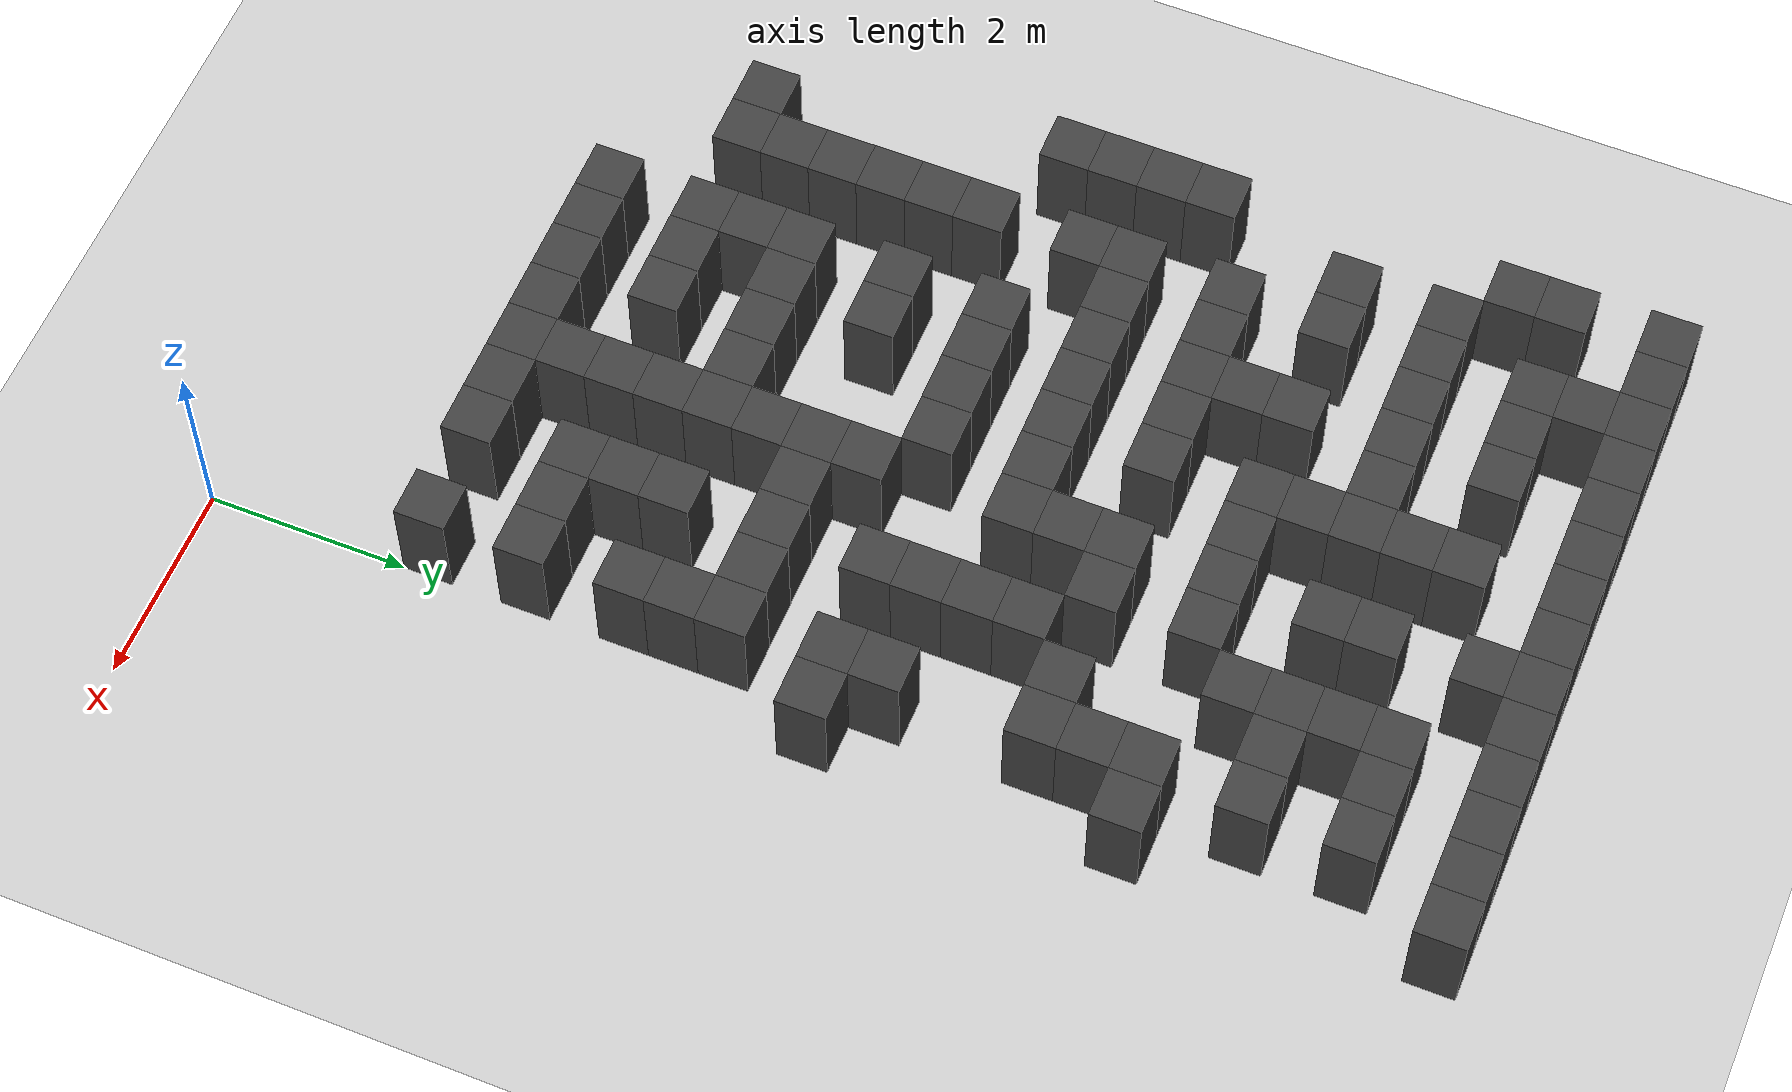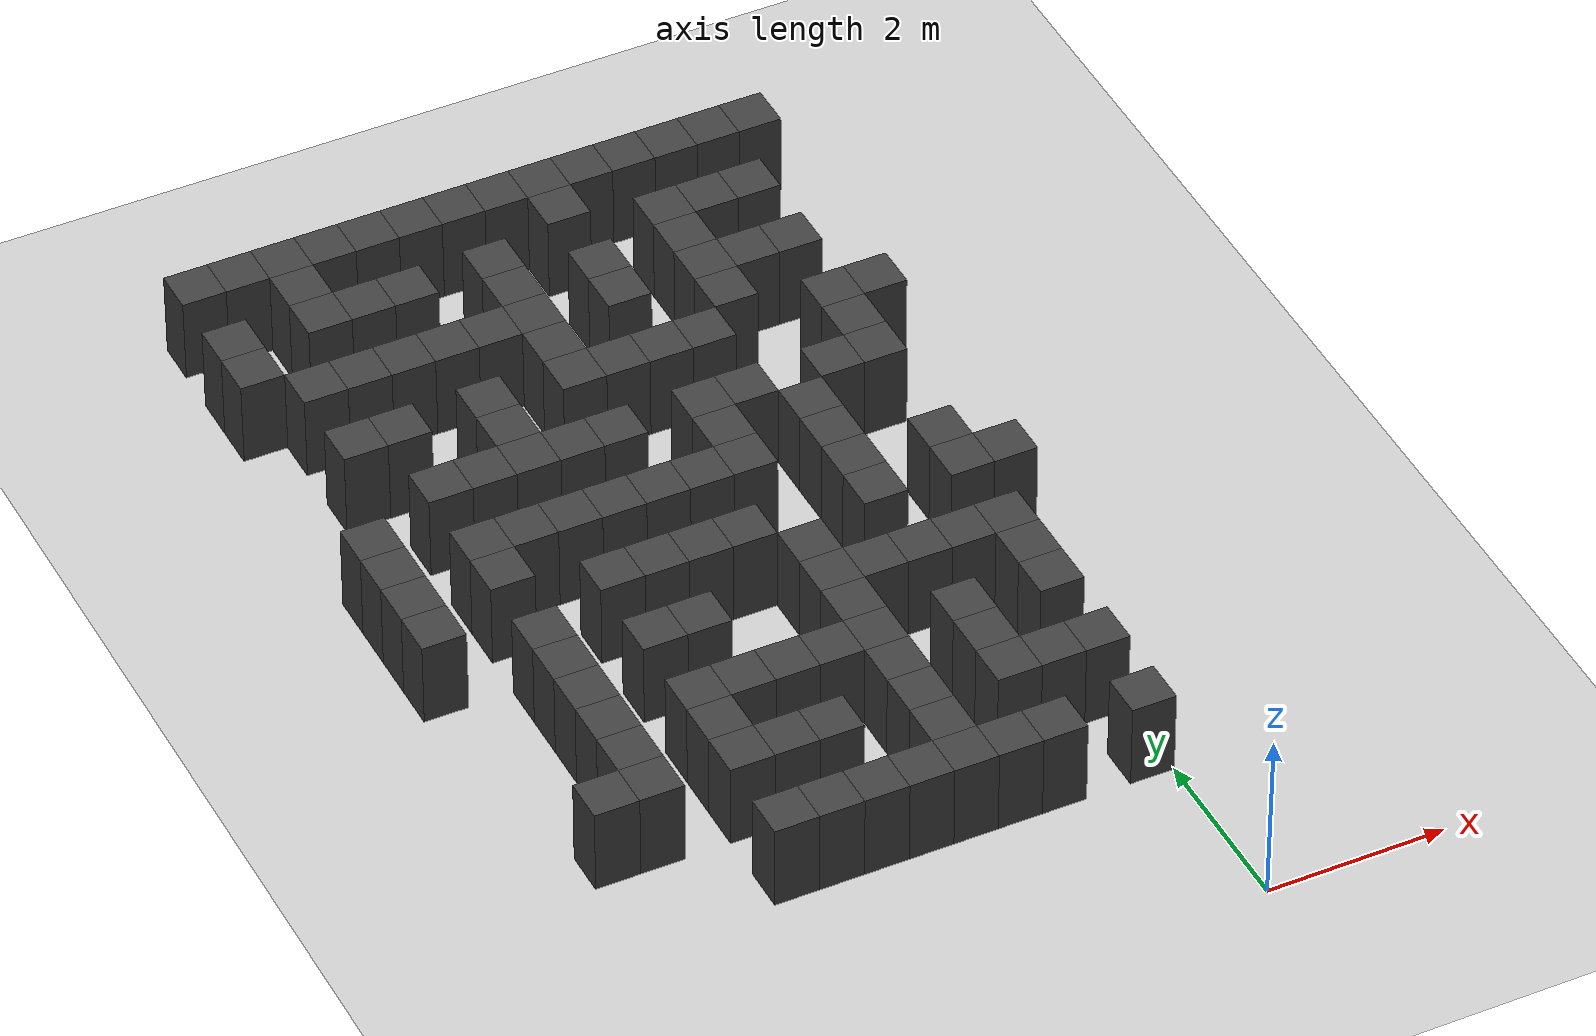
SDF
<sdf version="1.7">
 <world name="map_17503">
  <model name="ground_plane">
   <static>true</static>
   <link name="link">
    <collision name="collision">
     <geometry><plane><normal>0 0 1</normal><size>200 200</size></plane></geometry>
    </collision>
    <visual name="visual">
     <geometry><plane><normal>0 0 1</normal><size>200 200</size></plane></geometry>
     <material><ambient>0.8 0.8 0.8 1</ambient><diffuse>0.8 0.8 0.8 1</diffuse></material>
    </visual>
   </link>
  </model>
  <model name="maze_environment">
   <static>true</static>
   <link name="wall_12">
    <pose>-6.250 12.250 0.500 0 0 0</pose>
    <collision name="col"><geometry><box><size>0.5 0.5 1.0</size></box></geometry></collision>
    <visual name="vis">
     <geometry><box><size>0.5 0.5 1.0</size></box></geometry>
     <material><ambient>0.15 0.15 0.15 1</ambient><diffuse>0.25 0.25 0.25 1</diffuse></material>
    </visual>
   </link>
   <link name="wall_13">
    <pose>-5.750 12.250 0.500 0 0 0</pose>
    <collision name="col"><geometry><box><size>0.5 0.5 1.0</size></box></geometry></collision>
    <visual name="vis">
     <geometry><box><size>0.5 0.5 1.0</size></box></geometry>
     <material><ambient>0.15 0.15 0.15 1</ambient><diffuse>0.25 0.25 0.25 1</diffuse></material>
    </visual>
   </link>
   <link name="wall_14">
    <pose>-5.250 12.250 0.500 0 0 0</pose>
    <collision name="col"><geometry><box><size>0.5 0.5 1.0</size></box></geometry></collision>
    <visual name="vis">
     <geometry><box><size>0.5 0.5 1.0</size></box></geometry>
     <material><ambient>0.15 0.15 0.15 1</ambient><diffuse>0.25 0.25 0.25 1</diffuse></material>
    </visual>
   </link>
   <link name="wall_15">
    <pose>-4.750 12.250 0.500 0 0 0</pose>
    <collision name="col"><geometry><box><size>0.5 0.5 1.0</size></box></geometry></collision>
    <visual name="vis">
     <geometry><box><size>0.5 0.5 1.0</size></box></geometry>
     <material><ambient>0.15 0.15 0.15 1</ambient><diffuse>0.25 0.25 0.25 1</diffuse></material>
    </visual>
   </link>
   <link name="wall_16">
    <pose>-4.250 12.250 0.500 0 0 0</pose>
    <collision name="col"><geometry><box><size>0.5 0.5 1.0</size></box></geometry></collision>
    <visual name="vis">
     <geometry><box><size>0.5 0.5 1.0</size></box></geometry>
     <material><ambient>0.15 0.15 0.15 1</ambient><diffuse>0.25 0.25 0.25 1</diffuse></material>
    </visual>
   </link>
   <link name="wall_17">
    <pose>-3.750 12.250 0.500 0 0 0</pose>
    <collision name="col"><geometry><box><size>0.5 0.5 1.0</size></box></geometry></collision>
    <visual name="vis">
     <geometry><box><size>0.5 0.5 1.0</size></box></geometry>
     <material><ambient>0.15 0.15 0.15 1</ambient><diffuse>0.25 0.25 0.25 1</diffuse></material>
    </visual>
   </link>
   <link name="wall_18">
    <pose>-3.250 12.250 0.500 0 0 0</pose>
    <collision name="col"><geometry><box><size>0.5 0.5 1.0</size></box></geometry></collision>
    <visual name="vis">
     <geometry><box><size>0.5 0.5 1.0</size></box></geometry>
     <material><ambient>0.15 0.15 0.15 1</ambient><diffuse>0.25 0.25 0.25 1</diffuse></material>
    </visual>
   </link>
   <link name="wall_19">
    <pose>-2.750 12.250 0.500 0 0 0</pose>
    <collision name="col"><geometry><box><size>0.5 0.5 1.0</size></box></geometry></collision>
    <visual name="vis">
     <geometry><box><size>0.5 0.5 1.0</size></box></geometry>
     <material><ambient>0.15 0.15 0.15 1</ambient><diffuse>0.25 0.25 0.25 1</diffuse></material>
    </visual>
   </link>
   <link name="wall_20">
    <pose>-2.250 12.250 0.500 0 0 0</pose>
    <collision name="col"><geometry><box><size>0.5 0.5 1.0</size></box></geometry></collision>
    <visual name="vis">
     <geometry><box><size>0.5 0.5 1.0</size></box></geometry>
     <material><ambient>0.15 0.15 0.15 1</ambient><diffuse>0.25 0.25 0.25 1</diffuse></material>
    </visual>
   </link>
   <link name="wall_21">
    <pose>-1.750 12.250 0.500 0 0 0</pose>
    <collision name="col"><geometry><box><size>0.5 0.5 1.0</size></box></geometry></collision>
    <visual name="vis">
     <geometry><box><size>0.5 0.5 1.0</size></box></geometry>
     <material><ambient>0.15 0.15 0.15 1</ambient><diffuse>0.25 0.25 0.25 1</diffuse></material>
    </visual>
   </link>
   <link name="wall_22">
    <pose>-1.250 12.250 0.500 0 0 0</pose>
    <collision name="col"><geometry><box><size>0.5 0.5 1.0</size></box></geometry></collision>
    <visual name="vis">
     <geometry><box><size>0.5 0.5 1.0</size></box></geometry>
     <material><ambient>0.15 0.15 0.15 1</ambient><diffuse>0.25 0.25 0.25 1</diffuse></material>
    </visual>
   </link>
   <link name="wall_23">
    <pose>-0.750 12.250 0.500 0 0 0</pose>
    <collision name="col"><geometry><box><size>0.5 0.5 1.0</size></box></geometry></collision>
    <visual name="vis">
     <geometry><box><size>0.5 0.5 1.0</size></box></geometry>
     <material><ambient>0.15 0.15 0.15 1</ambient><diffuse>0.25 0.25 0.25 1</diffuse></material>
    </visual>
   </link>
   <link name="wall_24">
    <pose>-0.250 12.250 0.500 0 0 0</pose>
    <collision name="col"><geometry><box><size>0.5 0.5 1.0</size></box></geometry></collision>
    <visual name="vis">
     <geometry><box><size>0.5 0.5 1.0</size></box></geometry>
     <material><ambient>0.15 0.15 0.15 1</ambient><diffuse>0.25 0.25 0.25 1</diffuse></material>
    </visual>
   </link>
   <link name="wall_25">
    <pose>0.250 12.250 0.500 0 0 0</pose>
    <collision name="col"><geometry><box><size>0.5 0.5 1.0</size></box></geometry></collision>
    <visual name="vis">
     <geometry><box><size>0.5 0.5 1.0</size></box></geometry>
     <material><ambient>0.15 0.15 0.15 1</ambient><diffuse>0.25 0.25 0.25 1</diffuse></material>
    </visual>
   </link>
   <link name="wall_53">
    <pose>-5.250 11.750 0.500 0 0 0</pose>
    <collision name="col"><geometry><box><size>0.5 0.5 1.0</size></box></geometry></collision>
    <visual name="vis">
     <geometry><box><size>0.5 0.5 1.0</size></box></geometry>
     <material><ambient>0.15 0.15 0.15 1</ambient><diffuse>0.25 0.25 0.25 1</diffuse></material>
    </visual>
   </link>
   <link name="wall_54">
    <pose>-2.250 11.750 0.500 0 0 0</pose>
    <collision name="col"><geometry><box><size>0.5 0.5 1.0</size></box></geometry></collision>
    <visual name="vis">
     <geometry><box><size>0.5 0.5 1.0</size></box></geometry>
     <material><ambient>0.15 0.15 0.15 1</ambient><diffuse>0.25 0.25 0.25 1</diffuse></material>
    </visual>
   </link>
   <link name="wall_66">
    <pose>-6.250 11.250 0.500 0 0 0</pose>
    <collision name="col"><geometry><box><size>0.5 0.5 1.0</size></box></geometry></collision>
    <visual name="vis">
     <geometry><box><size>0.5 0.5 1.0</size></box></geometry>
     <material><ambient>0.15 0.15 0.15 1</ambient><diffuse>0.25 0.25 0.25 1</diffuse></material>
    </visual>
   </link>
   <link name="wall_67">
    <pose>-5.250 11.250 0.500 0 0 0</pose>
    <collision name="col"><geometry><box><size>0.5 0.5 1.0</size></box></geometry></collision>
    <visual name="vis">
     <geometry><box><size>0.5 0.5 1.0</size></box></geometry>
     <material><ambient>0.15 0.15 0.15 1</ambient><diffuse>0.25 0.25 0.25 1</diffuse></material>
    </visual>
   </link>
   <link name="wall_68">
    <pose>-4.750 11.250 0.500 0 0 0</pose>
    <collision name="col"><geometry><box><size>0.5 0.5 1.0</size></box></geometry></collision>
    <visual name="vis">
     <geometry><box><size>0.5 0.5 1.0</size></box></geometry>
     <material><ambient>0.15 0.15 0.15 1</ambient><diffuse>0.25 0.25 0.25 1</diffuse></material>
    </visual>
   </link>
   <link name="wall_69">
    <pose>-4.250 11.250 0.500 0 0 0</pose>
    <collision name="col"><geometry><box><size>0.5 0.5 1.0</size></box></geometry></collision>
    <visual name="vis">
     <geometry><box><size>0.5 0.5 1.0</size></box></geometry>
     <material><ambient>0.15 0.15 0.15 1</ambient><diffuse>0.25 0.25 0.25 1</diffuse></material>
    </visual>
   </link>
   <link name="wall_70">
    <pose>-3.250 11.250 0.500 0 0 0</pose>
    <collision name="col"><geometry><box><size>0.5 0.5 1.0</size></box></geometry></collision>
    <visual name="vis">
     <geometry><box><size>0.5 0.5 1.0</size></box></geometry>
     <material><ambient>0.15 0.15 0.15 1</ambient><diffuse>0.25 0.25 0.25 1</diffuse></material>
    </visual>
   </link>
   <link name="wall_71">
    <pose>-1.250 11.250 0.500 0 0 0</pose>
    <collision name="col"><geometry><box><size>0.5 0.5 1.0</size></box></geometry></collision>
    <visual name="vis">
     <geometry><box><size>0.5 0.5 1.0</size></box></geometry>
     <material><ambient>0.15 0.15 0.15 1</ambient><diffuse>0.25 0.25 0.25 1</diffuse></material>
    </visual>
   </link>
   <link name="wall_72">
    <pose>-0.750 11.250 0.500 0 0 0</pose>
    <collision name="col"><geometry><box><size>0.5 0.5 1.0</size></box></geometry></collision>
    <visual name="vis">
     <geometry><box><size>0.5 0.5 1.0</size></box></geometry>
     <material><ambient>0.15 0.15 0.15 1</ambient><diffuse>0.25 0.25 0.25 1</diffuse></material>
    </visual>
   </link>
   <link name="wall_73">
    <pose>-0.250 11.250 0.500 0 0 0</pose>
    <collision name="col"><geometry><box><size>0.5 0.5 1.0</size></box></geometry></collision>
    <visual name="vis">
     <geometry><box><size>0.5 0.5 1.0</size></box></geometry>
     <material><ambient>0.15 0.15 0.15 1</ambient><diffuse>0.25 0.25 0.25 1</diffuse></material>
    </visual>
   </link>
   <link name="wall_96">
    <pose>-6.250 10.750 0.500 0 0 0</pose>
    <collision name="col"><geometry><box><size>0.5 0.5 1.0</size></box></geometry></collision>
    <visual name="vis">
     <geometry><box><size>0.5 0.5 1.0</size></box></geometry>
     <material><ambient>0.15 0.15 0.15 1</ambient><diffuse>0.25 0.25 0.25 1</diffuse></material>
    </visual>
   </link>
   <link name="wall_97">
    <pose>-3.250 10.750 0.500 0 0 0</pose>
    <collision name="col"><geometry><box><size>0.5 0.5 1.0</size></box></geometry></collision>
    <visual name="vis">
     <geometry><box><size>0.5 0.5 1.0</size></box></geometry>
     <material><ambient>0.15 0.15 0.15 1</ambient><diffuse>0.25 0.25 0.25 1</diffuse></material>
    </visual>
   </link>
   <link name="wall_98">
    <pose>-2.250 10.750 0.500 0 0 0</pose>
    <collision name="col"><geometry><box><size>0.5 0.5 1.0</size></box></geometry></collision>
    <visual name="vis">
     <geometry><box><size>0.5 0.5 1.0</size></box></geometry>
     <material><ambient>0.15 0.15 0.15 1</ambient><diffuse>0.25 0.25 0.25 1</diffuse></material>
    </visual>
   </link>
   <link name="wall_99">
    <pose>-1.250 10.750 0.500 0 0 0</pose>
    <collision name="col"><geometry><box><size>0.5 0.5 1.0</size></box></geometry></collision>
    <visual name="vis">
     <geometry><box><size>0.5 0.5 1.0</size></box></geometry>
     <material><ambient>0.15 0.15 0.15 1</ambient><diffuse>0.25 0.25 0.25 1</diffuse></material>
    </visual>
   </link>
   <link name="wall_118">
    <pose>-5.750 10.250 0.500 0 0 0</pose>
    <collision name="col"><geometry><box><size>0.5 0.5 1.0</size></box></geometry></collision>
    <visual name="vis">
     <geometry><box><size>0.5 0.5 1.0</size></box></geometry>
     <material><ambient>0.15 0.15 0.15 1</ambient><diffuse>0.25 0.25 0.25 1</diffuse></material>
    </visual>
   </link>
   <link name="wall_119">
    <pose>-5.250 10.250 0.500 0 0 0</pose>
    <collision name="col"><geometry><box><size>0.5 0.5 1.0</size></box></geometry></collision>
    <visual name="vis">
     <geometry><box><size>0.5 0.5 1.0</size></box></geometry>
     <material><ambient>0.15 0.15 0.15 1</ambient><diffuse>0.25 0.25 0.25 1</diffuse></material>
    </visual>
   </link>
   <link name="wall_120">
    <pose>-4.750 10.250 0.500 0 0 0</pose>
    <collision name="col"><geometry><box><size>0.5 0.5 1.0</size></box></geometry></collision>
    <visual name="vis">
     <geometry><box><size>0.5 0.5 1.0</size></box></geometry>
     <material><ambient>0.15 0.15 0.15 1</ambient><diffuse>0.25 0.25 0.25 1</diffuse></material>
    </visual>
   </link>
   <link name="wall_121">
    <pose>-4.250 10.250 0.500 0 0 0</pose>
    <collision name="col"><geometry><box><size>0.5 0.5 1.0</size></box></geometry></collision>
    <visual name="vis">
     <geometry><box><size>0.5 0.5 1.0</size></box></geometry>
     <material><ambient>0.15 0.15 0.15 1</ambient><diffuse>0.25 0.25 0.25 1</diffuse></material>
    </visual>
   </link>
   <link name="wall_122">
    <pose>-3.750 10.250 0.500 0 0 0</pose>
    <collision name="col"><geometry><box><size>0.5 0.5 1.0</size></box></geometry></collision>
    <visual name="vis">
     <geometry><box><size>0.5 0.5 1.0</size></box></geometry>
     <material><ambient>0.15 0.15 0.15 1</ambient><diffuse>0.25 0.25 0.25 1</diffuse></material>
    </visual>
   </link>
   <link name="wall_123">
    <pose>-3.250 10.250 0.500 0 0 0</pose>
    <collision name="col"><geometry><box><size>0.5 0.5 1.0</size></box></geometry></collision>
    <visual name="vis">
     <geometry><box><size>0.5 0.5 1.0</size></box></geometry>
     <material><ambient>0.15 0.15 0.15 1</ambient><diffuse>0.25 0.25 0.25 1</diffuse></material>
    </visual>
   </link>
   <link name="wall_124">
    <pose>-2.250 10.250 0.500 0 0 0</pose>
    <collision name="col"><geometry><box><size>0.5 0.5 1.0</size></box></geometry></collision>
    <visual name="vis">
     <geometry><box><size>0.5 0.5 1.0</size></box></geometry>
     <material><ambient>0.15 0.15 0.15 1</ambient><diffuse>0.25 0.25 0.25 1</diffuse></material>
    </visual>
   </link>
   <link name="wall_125">
    <pose>-1.250 10.250 0.500 0 0 0</pose>
    <collision name="col"><geometry><box><size>0.5 0.5 1.0</size></box></geometry></collision>
    <visual name="vis">
     <geometry><box><size>0.5 0.5 1.0</size></box></geometry>
     <material><ambient>0.15 0.15 0.15 1</ambient><diffuse>0.25 0.25 0.25 1</diffuse></material>
    </visual>
   </link>
   <link name="wall_126">
    <pose>-0.750 10.250 0.500 0 0 0</pose>
    <collision name="col"><geometry><box><size>0.5 0.5 1.0</size></box></geometry></collision>
    <visual name="vis">
     <geometry><box><size>0.5 0.5 1.0</size></box></geometry>
     <material><ambient>0.15 0.15 0.15 1</ambient><diffuse>0.25 0.25 0.25 1</diffuse></material>
    </visual>
   </link>
   <link name="wall_127">
    <pose>-0.250 10.250 0.500 0 0 0</pose>
    <collision name="col"><geometry><box><size>0.5 0.5 1.0</size></box></geometry></collision>
    <visual name="vis">
     <geometry><box><size>0.5 0.5 1.0</size></box></geometry>
     <material><ambient>0.15 0.15 0.15 1</ambient><diffuse>0.25 0.25 0.25 1</diffuse></material>
    </visual>
   </link>
   <link name="wall_145">
    <pose>-3.250 9.750 0.500 0 0 0</pose>
    <collision name="col"><geometry><box><size>0.5 0.5 1.0</size></box></geometry></collision>
    <visual name="vis">
     <geometry><box><size>0.5 0.5 1.0</size></box></geometry>
     <material><ambient>0.15 0.15 0.15 1</ambient><diffuse>0.25 0.25 0.25 1</diffuse></material>
    </visual>
   </link>
   <link name="wall_146">
    <pose>-1.250 9.750 0.500 0 0 0</pose>
    <collision name="col"><geometry><box><size>0.5 0.5 1.0</size></box></geometry></collision>
    <visual name="vis">
     <geometry><box><size>0.5 0.5 1.0</size></box></geometry>
     <material><ambient>0.15 0.15 0.15 1</ambient><diffuse>0.25 0.25 0.25 1</diffuse></material>
    </visual>
   </link>
   <link name="wall_162">
    <pose>-5.750 9.250 0.500 0 0 0</pose>
    <collision name="col"><geometry><box><size>0.5 0.5 1.0</size></box></geometry></collision>
    <visual name="vis">
     <geometry><box><size>0.5 0.5 1.0</size></box></geometry>
     <material><ambient>0.15 0.15 0.15 1</ambient><diffuse>0.25 0.25 0.25 1</diffuse></material>
    </visual>
   </link>
   <link name="wall_163">
    <pose>-5.250 9.250 0.500 0 0 0</pose>
    <collision name="col"><geometry><box><size>0.5 0.5 1.0</size></box></geometry></collision>
    <visual name="vis">
     <geometry><box><size>0.5 0.5 1.0</size></box></geometry>
     <material><ambient>0.15 0.15 0.15 1</ambient><diffuse>0.25 0.25 0.25 1</diffuse></material>
    </visual>
   </link>
   <link name="wall_164">
    <pose>-4.250 9.250 0.500 0 0 0</pose>
    <collision name="col"><geometry><box><size>0.5 0.5 1.0</size></box></geometry></collision>
    <visual name="vis">
     <geometry><box><size>0.5 0.5 1.0</size></box></geometry>
     <material><ambient>0.15 0.15 0.15 1</ambient><diffuse>0.25 0.25 0.25 1</diffuse></material>
    </visual>
   </link>
   <link name="wall_165">
    <pose>-3.250 9.250 0.500 0 0 0</pose>
    <collision name="col"><geometry><box><size>0.5 0.5 1.0</size></box></geometry></collision>
    <visual name="vis">
     <geometry><box><size>0.5 0.5 1.0</size></box></geometry>
     <material><ambient>0.15 0.15 0.15 1</ambient><diffuse>0.25 0.25 0.25 1</diffuse></material>
    </visual>
   </link>
   <link name="wall_166">
    <pose>-2.750 9.250 0.500 0 0 0</pose>
    <collision name="col"><geometry><box><size>0.5 0.5 1.0</size></box></geometry></collision>
    <visual name="vis">
     <geometry><box><size>0.5 0.5 1.0</size></box></geometry>
     <material><ambient>0.15 0.15 0.15 1</ambient><diffuse>0.25 0.25 0.25 1</diffuse></material>
    </visual>
   </link>
   <link name="wall_167">
    <pose>-2.250 9.250 0.500 0 0 0</pose>
    <collision name="col"><geometry><box><size>0.5 0.5 1.0</size></box></geometry></collision>
    <visual name="vis">
     <geometry><box><size>0.5 0.5 1.0</size></box></geometry>
     <material><ambient>0.15 0.15 0.15 1</ambient><diffuse>0.25 0.25 0.25 1</diffuse></material>
    </visual>
   </link>
   <link name="wall_168">
    <pose>-1.750 9.250 0.500 0 0 0</pose>
    <collision name="col"><geometry><box><size>0.5 0.5 1.0</size></box></geometry></collision>
    <visual name="vis">
     <geometry><box><size>0.5 0.5 1.0</size></box></geometry>
     <material><ambient>0.15 0.15 0.15 1</ambient><diffuse>0.25 0.25 0.25 1</diffuse></material>
    </visual>
   </link>
   <link name="wall_169">
    <pose>-0.250 9.250 0.500 0 0 0</pose>
    <collision name="col"><geometry><box><size>0.5 0.5 1.0</size></box></geometry></collision>
    <visual name="vis">
     <geometry><box><size>0.5 0.5 1.0</size></box></geometry>
     <material><ambient>0.15 0.15 0.15 1</ambient><diffuse>0.25 0.25 0.25 1</diffuse></material>
    </visual>
   </link>
   <link name="wall_170">
    <pose>0.250 9.250 0.500 0 0 0</pose>
    <collision name="col"><geometry><box><size>0.5 0.5 1.0</size></box></geometry></collision>
    <visual name="vis">
     <geometry><box><size>0.5 0.5 1.0</size></box></geometry>
     <material><ambient>0.15 0.15 0.15 1</ambient><diffuse>0.25 0.25 0.25 1</diffuse></material>
    </visual>
   </link>
   <link name="wall_194">
    <pose>-4.250 8.750 0.500 0 0 0</pose>
    <collision name="col"><geometry><box><size>0.5 0.5 1.0</size></box></geometry></collision>
    <visual name="vis">
     <geometry><box><size>0.5 0.5 1.0</size></box></geometry>
     <material><ambient>0.15 0.15 0.15 1</ambient><diffuse>0.25 0.25 0.25 1</diffuse></material>
    </visual>
   </link>
   <link name="wall_195">
    <pose>-0.250 8.750 0.500 0 0 0</pose>
    <collision name="col"><geometry><box><size>0.5 0.5 1.0</size></box></geometry></collision>
    <visual name="vis">
     <geometry><box><size>0.5 0.5 1.0</size></box></geometry>
     <material><ambient>0.15 0.15 0.15 1</ambient><diffuse>0.25 0.25 0.25 1</diffuse></material>
    </visual>
   </link>
   <link name="wall_210">
    <pose>-5.250 8.250 0.500 0 0 0</pose>
    <collision name="col"><geometry><box><size>0.5 0.5 1.0</size></box></geometry></collision>
    <visual name="vis">
     <geometry><box><size>0.5 0.5 1.0</size></box></geometry>
     <material><ambient>0.15 0.15 0.15 1</ambient><diffuse>0.25 0.25 0.25 1</diffuse></material>
    </visual>
   </link>
   <link name="wall_211">
    <pose>-4.750 8.250 0.500 0 0 0</pose>
    <collision name="col"><geometry><box><size>0.5 0.5 1.0</size></box></geometry></collision>
    <visual name="vis">
     <geometry><box><size>0.5 0.5 1.0</size></box></geometry>
     <material><ambient>0.15 0.15 0.15 1</ambient><diffuse>0.25 0.25 0.25 1</diffuse></material>
    </visual>
   </link>
   <link name="wall_212">
    <pose>-4.250 8.250 0.500 0 0 0</pose>
    <collision name="col"><geometry><box><size>0.5 0.5 1.0</size></box></geometry></collision>
    <visual name="vis">
     <geometry><box><size>0.5 0.5 1.0</size></box></geometry>
     <material><ambient>0.15 0.15 0.15 1</ambient><diffuse>0.25 0.25 0.25 1</diffuse></material>
    </visual>
   </link>
   <link name="wall_213">
    <pose>-3.750 8.250 0.500 0 0 0</pose>
    <collision name="col"><geometry><box><size>0.5 0.5 1.0</size></box></geometry></collision>
    <visual name="vis">
     <geometry><box><size>0.5 0.5 1.0</size></box></geometry>
     <material><ambient>0.15 0.15 0.15 1</ambient><diffuse>0.25 0.25 0.25 1</diffuse></material>
    </visual>
   </link>
   <link name="wall_214">
    <pose>-3.250 8.250 0.500 0 0 0</pose>
    <collision name="col"><geometry><box><size>0.5 0.5 1.0</size></box></geometry></collision>
    <visual name="vis">
     <geometry><box><size>0.5 0.5 1.0</size></box></geometry>
     <material><ambient>0.15 0.15 0.15 1</ambient><diffuse>0.25 0.25 0.25 1</diffuse></material>
    </visual>
   </link>
   <link name="wall_215">
    <pose>-2.250 8.250 0.500 0 0 0</pose>
    <collision name="col"><geometry><box><size>0.5 0.5 1.0</size></box></geometry></collision>
    <visual name="vis">
     <geometry><box><size>0.5 0.5 1.0</size></box></geometry>
     <material><ambient>0.15 0.15 0.15 1</ambient><diffuse>0.25 0.25 0.25 1</diffuse></material>
    </visual>
   </link>
   <link name="wall_216">
    <pose>-1.750 8.250 0.500 0 0 0</pose>
    <collision name="col"><geometry><box><size>0.5 0.5 1.0</size></box></geometry></collision>
    <visual name="vis">
     <geometry><box><size>0.5 0.5 1.0</size></box></geometry>
     <material><ambient>0.15 0.15 0.15 1</ambient><diffuse>0.25 0.25 0.25 1</diffuse></material>
    </visual>
   </link>
   <link name="wall_217">
    <pose>-0.750 8.250 0.500 0 0 0</pose>
    <collision name="col"><geometry><box><size>0.5 0.5 1.0</size></box></geometry></collision>
    <visual name="vis">
     <geometry><box><size>0.5 0.5 1.0</size></box></geometry>
     <material><ambient>0.15 0.15 0.15 1</ambient><diffuse>0.25 0.25 0.25 1</diffuse></material>
    </visual>
   </link>
   <link name="wall_218">
    <pose>-0.250 8.250 0.500 0 0 0</pose>
    <collision name="col"><geometry><box><size>0.5 0.5 1.0</size></box></geometry></collision>
    <visual name="vis">
     <geometry><box><size>0.5 0.5 1.0</size></box></geometry>
     <material><ambient>0.15 0.15 0.15 1</ambient><diffuse>0.25 0.25 0.25 1</diffuse></material>
    </visual>
   </link>
   <link name="wall_239">
    <pose>-6.250 7.750 0.500 0 0 0</pose>
    <collision name="col"><geometry><box><size>0.5 0.5 1.0</size></box></geometry></collision>
    <visual name="vis">
     <geometry><box><size>0.5 0.5 1.0</size></box></geometry>
     <material><ambient>0.15 0.15 0.15 1</ambient><diffuse>0.25 0.25 0.25 1</diffuse></material>
    </visual>
   </link>
   <link name="wall_240">
    <pose>-2.250 7.750 0.500 0 0 0</pose>
    <collision name="col"><geometry><box><size>0.5 0.5 1.0</size></box></geometry></collision>
    <visual name="vis">
     <geometry><box><size>0.5 0.5 1.0</size></box></geometry>
     <material><ambient>0.15 0.15 0.15 1</ambient><diffuse>0.25 0.25 0.25 1</diffuse></material>
    </visual>
   </link>
   <link name="wall_241">
    <pose>-1.250 7.750 0.500 0 0 0</pose>
    <collision name="col"><geometry><box><size>0.5 0.5 1.0</size></box></geometry></collision>
    <visual name="vis">
     <geometry><box><size>0.5 0.5 1.0</size></box></geometry>
     <material><ambient>0.15 0.15 0.15 1</ambient><diffuse>0.25 0.25 0.25 1</diffuse></material>
    </visual>
   </link>
   <link name="wall_263">
    <pose>-6.250 7.250 0.500 0 0 0</pose>
    <collision name="col"><geometry><box><size>0.5 0.5 1.0</size></box></geometry></collision>
    <visual name="vis">
     <geometry><box><size>0.5 0.5 1.0</size></box></geometry>
     <material><ambient>0.15 0.15 0.15 1</ambient><diffuse>0.25 0.25 0.25 1</diffuse></material>
    </visual>
   </link>
   <link name="wall_264">
    <pose>-5.250 7.250 0.500 0 0 0</pose>
    <collision name="col"><geometry><box><size>0.5 0.5 1.0</size></box></geometry></collision>
    <visual name="vis">
     <geometry><box><size>0.5 0.5 1.0</size></box></geometry>
     <material><ambient>0.15 0.15 0.15 1</ambient><diffuse>0.25 0.25 0.25 1</diffuse></material>
    </visual>
   </link>
   <link name="wall_265">
    <pose>-4.750 7.250 0.500 0 0 0</pose>
    <collision name="col"><geometry><box><size>0.5 0.5 1.0</size></box></geometry></collision>
    <visual name="vis">
     <geometry><box><size>0.5 0.5 1.0</size></box></geometry>
     <material><ambient>0.15 0.15 0.15 1</ambient><diffuse>0.25 0.25 0.25 1</diffuse></material>
    </visual>
   </link>
   <link name="wall_266">
    <pose>-4.250 7.250 0.500 0 0 0</pose>
    <collision name="col"><geometry><box><size>0.5 0.5 1.0</size></box></geometry></collision>
    <visual name="vis">
     <geometry><box><size>0.5 0.5 1.0</size></box></geometry>
     <material><ambient>0.15 0.15 0.15 1</ambient><diffuse>0.25 0.25 0.25 1</diffuse></material>
    </visual>
   </link>
   <link name="wall_267">
    <pose>-3.750 7.250 0.500 0 0 0</pose>
    <collision name="col"><geometry><box><size>0.5 0.5 1.0</size></box></geometry></collision>
    <visual name="vis">
     <geometry><box><size>0.5 0.5 1.0</size></box></geometry>
     <material><ambient>0.15 0.15 0.15 1</ambient><diffuse>0.25 0.25 0.25 1</diffuse></material>
    </visual>
   </link>
   <link name="wall_268">
    <pose>-3.250 7.250 0.500 0 0 0</pose>
    <collision name="col"><geometry><box><size>0.5 0.5 1.0</size></box></geometry></collision>
    <visual name="vis">
     <geometry><box><size>0.5 0.5 1.0</size></box></geometry>
     <material><ambient>0.15 0.15 0.15 1</ambient><diffuse>0.25 0.25 0.25 1</diffuse></material>
    </visual>
   </link>
   <link name="wall_269">
    <pose>-2.750 7.250 0.500 0 0 0</pose>
    <collision name="col"><geometry><box><size>0.5 0.5 1.0</size></box></geometry></collision>
    <visual name="vis">
     <geometry><box><size>0.5 0.5 1.0</size></box></geometry>
     <material><ambient>0.15 0.15 0.15 1</ambient><diffuse>0.25 0.25 0.25 1</diffuse></material>
    </visual>
   </link>
   <link name="wall_270">
    <pose>-2.250 7.250 0.500 0 0 0</pose>
    <collision name="col"><geometry><box><size>0.5 0.5 1.0</size></box></geometry></collision>
    <visual name="vis">
     <geometry><box><size>0.5 0.5 1.0</size></box></geometry>
     <material><ambient>0.15 0.15 0.15 1</ambient><diffuse>0.25 0.25 0.25 1</diffuse></material>
    </visual>
   </link>
   <link name="wall_271">
    <pose>-1.250 7.250 0.500 0 0 0</pose>
    <collision name="col"><geometry><box><size>0.5 0.5 1.0</size></box></geometry></collision>
    <visual name="vis">
     <geometry><box><size>0.5 0.5 1.0</size></box></geometry>
     <material><ambient>0.15 0.15 0.15 1</ambient><diffuse>0.25 0.25 0.25 1</diffuse></material>
    </visual>
   </link>
   <link name="wall_286">
    <pose>-6.250 6.750 0.500 0 0 0</pose>
    <collision name="col"><geometry><box><size>0.5 0.5 1.0</size></box></geometry></collision>
    <visual name="vis">
     <geometry><box><size>0.5 0.5 1.0</size></box></geometry>
     <material><ambient>0.15 0.15 0.15 1</ambient><diffuse>0.25 0.25 0.25 1</diffuse></material>
    </visual>
   </link>
   <link name="wall_287">
    <pose>-5.250 6.750 0.500 0 0 0</pose>
    <collision name="col"><geometry><box><size>0.5 0.5 1.0</size></box></geometry></collision>
    <visual name="vis">
     <geometry><box><size>0.5 0.5 1.0</size></box></geometry>
     <material><ambient>0.15 0.15 0.15 1</ambient><diffuse>0.25 0.25 0.25 1</diffuse></material>
    </visual>
   </link>
   <link name="wall_288">
    <pose>-1.250 6.750 0.500 0 0 0</pose>
    <collision name="col"><geometry><box><size>0.5 0.5 1.0</size></box></geometry></collision>
    <visual name="vis">
     <geometry><box><size>0.5 0.5 1.0</size></box></geometry>
     <material><ambient>0.15 0.15 0.15 1</ambient><diffuse>0.25 0.25 0.25 1</diffuse></material>
    </visual>
   </link>
   <link name="wall_289">
    <pose>-0.250 6.750 0.500 0 0 0</pose>
    <collision name="col"><geometry><box><size>0.5 0.5 1.0</size></box></geometry></collision>
    <visual name="vis">
     <geometry><box><size>0.5 0.5 1.0</size></box></geometry>
     <material><ambient>0.15 0.15 0.15 1</ambient><diffuse>0.25 0.25 0.25 1</diffuse></material>
    </visual>
   </link>
   <link name="wall_306">
    <pose>-6.250 6.250 0.500 0 0 0</pose>
    <collision name="col"><geometry><box><size>0.5 0.5 1.0</size></box></geometry></collision>
    <visual name="vis">
     <geometry><box><size>0.5 0.5 1.0</size></box></geometry>
     <material><ambient>0.15 0.15 0.15 1</ambient><diffuse>0.25 0.25 0.25 1</diffuse></material>
    </visual>
   </link>
   <link name="wall_307">
    <pose>-4.250 6.250 0.500 0 0 0</pose>
    <collision name="col"><geometry><box><size>0.5 0.5 1.0</size></box></geometry></collision>
    <visual name="vis">
     <geometry><box><size>0.5 0.5 1.0</size></box></geometry>
     <material><ambient>0.15 0.15 0.15 1</ambient><diffuse>0.25 0.25 0.25 1</diffuse></material>
    </visual>
   </link>
   <link name="wall_308">
    <pose>-3.750 6.250 0.500 0 0 0</pose>
    <collision name="col"><geometry><box><size>0.5 0.5 1.0</size></box></geometry></collision>
    <visual name="vis">
     <geometry><box><size>0.5 0.5 1.0</size></box></geometry>
     <material><ambient>0.15 0.15 0.15 1</ambient><diffuse>0.25 0.25 0.25 1</diffuse></material>
    </visual>
   </link>
   <link name="wall_309">
    <pose>-3.250 6.250 0.500 0 0 0</pose>
    <collision name="col"><geometry><box><size>0.5 0.5 1.0</size></box></geometry></collision>
    <visual name="vis">
     <geometry><box><size>0.5 0.5 1.0</size></box></geometry>
     <material><ambient>0.15 0.15 0.15 1</ambient><diffuse>0.25 0.25 0.25 1</diffuse></material>
    </visual>
   </link>
   <link name="wall_310">
    <pose>-2.750 6.250 0.500 0 0 0</pose>
    <collision name="col"><geometry><box><size>0.5 0.5 1.0</size></box></geometry></collision>
    <visual name="vis">
     <geometry><box><size>0.5 0.5 1.0</size></box></geometry>
     <material><ambient>0.15 0.15 0.15 1</ambient><diffuse>0.25 0.25 0.25 1</diffuse></material>
    </visual>
   </link>
   <link name="wall_311">
    <pose>-1.250 6.250 0.500 0 0 0</pose>
    <collision name="col"><geometry><box><size>0.5 0.5 1.0</size></box></geometry></collision>
    <visual name="vis">
     <geometry><box><size>0.5 0.5 1.0</size></box></geometry>
     <material><ambient>0.15 0.15 0.15 1</ambient><diffuse>0.25 0.25 0.25 1</diffuse></material>
    </visual>
   </link>
   <link name="wall_312">
    <pose>-0.250 6.250 0.500 0 0 0</pose>
    <collision name="col"><geometry><box><size>0.5 0.5 1.0</size></box></geometry></collision>
    <visual name="vis">
     <geometry><box><size>0.5 0.5 1.0</size></box></geometry>
     <material><ambient>0.15 0.15 0.15 1</ambient><diffuse>0.25 0.25 0.25 1</diffuse></material>
    </visual>
   </link>
   <link name="wall_313">
    <pose>0.250 6.250 0.500 0 0 0</pose>
    <collision name="col"><geometry><box><size>0.5 0.5 1.0</size></box></geometry></collision>
    <visual name="vis">
     <geometry><box><size>0.5 0.5 1.0</size></box></geometry>
     <material><ambient>0.15 0.15 0.15 1</ambient><diffuse>0.25 0.25 0.25 1</diffuse></material>
    </visual>
   </link>
   <link name="wall_337">
    <pose>-5.250 5.750 0.500 0 0 0</pose>
    <collision name="col"><geometry><box><size>0.5 0.5 1.0</size></box></geometry></collision>
    <visual name="vis">
     <geometry><box><size>0.5 0.5 1.0</size></box></geometry>
     <material><ambient>0.15 0.15 0.15 1</ambient><diffuse>0.25 0.25 0.25 1</diffuse></material>
    </visual>
   </link>
   <link name="wall_338">
    <pose>-2.250 5.750 0.500 0 0 0</pose>
    <collision name="col"><geometry><box><size>0.5 0.5 1.0</size></box></geometry></collision>
    <visual name="vis">
     <geometry><box><size>0.5 0.5 1.0</size></box></geometry>
     <material><ambient>0.15 0.15 0.15 1</ambient><diffuse>0.25 0.25 0.25 1</diffuse></material>
    </visual>
   </link>
   <link name="wall_355">
    <pose>-5.250 5.250 0.500 0 0 0</pose>
    <collision name="col"><geometry><box><size>0.5 0.5 1.0</size></box></geometry></collision>
    <visual name="vis">
     <geometry><box><size>0.5 0.5 1.0</size></box></geometry>
     <material><ambient>0.15 0.15 0.15 1</ambient><diffuse>0.25 0.25 0.25 1</diffuse></material>
    </visual>
   </link>
   <link name="wall_356">
    <pose>-4.250 5.250 0.500 0 0 0</pose>
    <collision name="col"><geometry><box><size>0.5 0.5 1.0</size></box></geometry></collision>
    <visual name="vis">
     <geometry><box><size>0.5 0.5 1.0</size></box></geometry>
     <material><ambient>0.15 0.15 0.15 1</ambient><diffuse>0.25 0.25 0.25 1</diffuse></material>
    </visual>
   </link>
   <link name="wall_357">
    <pose>-3.750 5.250 0.500 0 0 0</pose>
    <collision name="col"><geometry><box><size>0.5 0.5 1.0</size></box></geometry></collision>
    <visual name="vis">
     <geometry><box><size>0.5 0.5 1.0</size></box></geometry>
     <material><ambient>0.15 0.15 0.15 1</ambient><diffuse>0.25 0.25 0.25 1</diffuse></material>
    </visual>
   </link>
   <link name="wall_358">
    <pose>-2.250 5.250 0.500 0 0 0</pose>
    <collision name="col"><geometry><box><size>0.5 0.5 1.0</size></box></geometry></collision>
    <visual name="vis">
     <geometry><box><size>0.5 0.5 1.0</size></box></geometry>
     <material><ambient>0.15 0.15 0.15 1</ambient><diffuse>0.25 0.25 0.25 1</diffuse></material>
    </visual>
   </link>
   <link name="wall_359">
    <pose>-1.750 5.250 0.500 0 0 0</pose>
    <collision name="col"><geometry><box><size>0.5 0.5 1.0</size></box></geometry></collision>
    <visual name="vis">
     <geometry><box><size>0.5 0.5 1.0</size></box></geometry>
     <material><ambient>0.15 0.15 0.15 1</ambient><diffuse>0.25 0.25 0.25 1</diffuse></material>
    </visual>
   </link>
   <link name="wall_360">
    <pose>-1.250 5.250 0.500 0 0 0</pose>
    <collision name="col"><geometry><box><size>0.5 0.5 1.0</size></box></geometry></collision>
    <visual name="vis">
     <geometry><box><size>0.5 0.5 1.0</size></box></geometry>
     <material><ambient>0.15 0.15 0.15 1</ambient><diffuse>0.25 0.25 0.25 1</diffuse></material>
    </visual>
   </link>
   <link name="wall_361">
    <pose>-0.750 5.250 0.500 0 0 0</pose>
    <collision name="col"><geometry><box><size>0.5 0.5 1.0</size></box></geometry></collision>
    <visual name="vis">
     <geometry><box><size>0.5 0.5 1.0</size></box></geometry>
     <material><ambient>0.15 0.15 0.15 1</ambient><diffuse>0.25 0.25 0.25 1</diffuse></material>
    </visual>
   </link>
   <link name="wall_362">
    <pose>-0.250 5.250 0.500 0 0 0</pose>
    <collision name="col"><geometry><box><size>0.5 0.5 1.0</size></box></geometry></collision>
    <visual name="vis">
     <geometry><box><size>0.5 0.5 1.0</size></box></geometry>
     <material><ambient>0.15 0.15 0.15 1</ambient><diffuse>0.25 0.25 0.25 1</diffuse></material>
    </visual>
   </link>
   <link name="wall_383">
    <pose>-5.250 4.750 0.500 0 0 0</pose>
    <collision name="col"><geometry><box><size>0.5 0.5 1.0</size></box></geometry></collision>
    <visual name="vis">
     <geometry><box><size>0.5 0.5 1.0</size></box></geometry>
     <material><ambient>0.15 0.15 0.15 1</ambient><diffuse>0.25 0.25 0.25 1</diffuse></material>
    </visual>
   </link>
   <link name="wall_384">
    <pose>-2.250 4.750 0.500 0 0 0</pose>
    <collision name="col"><geometry><box><size>0.5 0.5 1.0</size></box></geometry></collision>
    <visual name="vis">
     <geometry><box><size>0.5 0.5 1.0</size></box></geometry>
     <material><ambient>0.15 0.15 0.15 1</ambient><diffuse>0.25 0.25 0.25 1</diffuse></material>
    </visual>
   </link>
   <link name="wall_385">
    <pose>-0.250 4.750 0.500 0 0 0</pose>
    <collision name="col"><geometry><box><size>0.5 0.5 1.0</size></box></geometry></collision>
    <visual name="vis">
     <geometry><box><size>0.5 0.5 1.0</size></box></geometry>
     <material><ambient>0.15 0.15 0.15 1</ambient><diffuse>0.25 0.25 0.25 1</diffuse></material>
    </visual>
   </link>
   <link name="wall_405">
    <pose>-5.250 4.250 0.500 0 0 0</pose>
    <collision name="col"><geometry><box><size>0.5 0.5 1.0</size></box></geometry></collision>
    <visual name="vis">
     <geometry><box><size>0.5 0.5 1.0</size></box></geometry>
     <material><ambient>0.15 0.15 0.15 1</ambient><diffuse>0.25 0.25 0.25 1</diffuse></material>
    </visual>
   </link>
   <link name="wall_406">
    <pose>-4.250 4.250 0.500 0 0 0</pose>
    <collision name="col"><geometry><box><size>0.5 0.5 1.0</size></box></geometry></collision>
    <visual name="vis">
     <geometry><box><size>0.5 0.5 1.0</size></box></geometry>
     <material><ambient>0.15 0.15 0.15 1</ambient><diffuse>0.25 0.25 0.25 1</diffuse></material>
    </visual>
   </link>
   <link name="wall_407">
    <pose>-3.750 4.250 0.500 0 0 0</pose>
    <collision name="col"><geometry><box><size>0.5 0.5 1.0</size></box></geometry></collision>
    <visual name="vis">
     <geometry><box><size>0.5 0.5 1.0</size></box></geometry>
     <material><ambient>0.15 0.15 0.15 1</ambient><diffuse>0.25 0.25 0.25 1</diffuse></material>
    </visual>
   </link>
   <link name="wall_408">
    <pose>-3.250 4.250 0.500 0 0 0</pose>
    <collision name="col"><geometry><box><size>0.5 0.5 1.0</size></box></geometry></collision>
    <visual name="vis">
     <geometry><box><size>0.5 0.5 1.0</size></box></geometry>
     <material><ambient>0.15 0.15 0.15 1</ambient><diffuse>0.25 0.25 0.25 1</diffuse></material>
    </visual>
   </link>
   <link name="wall_409">
    <pose>-2.750 4.250 0.500 0 0 0</pose>
    <collision name="col"><geometry><box><size>0.5 0.5 1.0</size></box></geometry></collision>
    <visual name="vis">
     <geometry><box><size>0.5 0.5 1.0</size></box></geometry>
     <material><ambient>0.15 0.15 0.15 1</ambient><diffuse>0.25 0.25 0.25 1</diffuse></material>
    </visual>
   </link>
   <link name="wall_410">
    <pose>-2.250 4.250 0.500 0 0 0</pose>
    <collision name="col"><geometry><box><size>0.5 0.5 1.0</size></box></geometry></collision>
    <visual name="vis">
     <geometry><box><size>0.5 0.5 1.0</size></box></geometry>
     <material><ambient>0.15 0.15 0.15 1</ambient><diffuse>0.25 0.25 0.25 1</diffuse></material>
    </visual>
   </link>
   <link name="wall_411">
    <pose>-1.250 4.250 0.500 0 0 0</pose>
    <collision name="col"><geometry><box><size>0.5 0.5 1.0</size></box></geometry></collision>
    <visual name="vis">
     <geometry><box><size>0.5 0.5 1.0</size></box></geometry>
     <material><ambient>0.15 0.15 0.15 1</ambient><diffuse>0.25 0.25 0.25 1</diffuse></material>
    </visual>
   </link>
   <link name="wall_412">
    <pose>-0.250 4.250 0.500 0 0 0</pose>
    <collision name="col"><geometry><box><size>0.5 0.5 1.0</size></box></geometry></collision>
    <visual name="vis">
     <geometry><box><size>0.5 0.5 1.0</size></box></geometry>
     <material><ambient>0.15 0.15 0.15 1</ambient><diffuse>0.25 0.25 0.25 1</diffuse></material>
    </visual>
   </link>
   <link name="wall_432">
    <pose>-5.250 3.750 0.500 0 0 0</pose>
    <collision name="col"><geometry><box><size>0.5 0.5 1.0</size></box></geometry></collision>
    <visual name="vis">
     <geometry><box><size>0.5 0.5 1.0</size></box></geometry>
     <material><ambient>0.15 0.15 0.15 1</ambient><diffuse>0.25 0.25 0.25 1</diffuse></material>
    </visual>
   </link>
   <link name="wall_433">
    <pose>-4.250 3.750 0.500 0 0 0</pose>
    <collision name="col"><geometry><box><size>0.5 0.5 1.0</size></box></geometry></collision>
    <visual name="vis">
     <geometry><box><size>0.5 0.5 1.0</size></box></geometry>
     <material><ambient>0.15 0.15 0.15 1</ambient><diffuse>0.25 0.25 0.25 1</diffuse></material>
    </visual>
   </link>
   <link name="wall_434">
    <pose>-2.250 3.750 0.500 0 0 0</pose>
    <collision name="col"><geometry><box><size>0.5 0.5 1.0</size></box></geometry></collision>
    <visual name="vis">
     <geometry><box><size>0.5 0.5 1.0</size></box></geometry>
     <material><ambient>0.15 0.15 0.15 1</ambient><diffuse>0.25 0.25 0.25 1</diffuse></material>
    </visual>
   </link>
   <link name="wall_435">
    <pose>-1.250 3.750 0.500 0 0 0</pose>
    <collision name="col"><geometry><box><size>0.5 0.5 1.0</size></box></geometry></collision>
    <visual name="vis">
     <geometry><box><size>0.5 0.5 1.0</size></box></geometry>
     <material><ambient>0.15 0.15 0.15 1</ambient><diffuse>0.25 0.25 0.25 1</diffuse></material>
    </visual>
   </link>
   <link name="wall_454">
    <pose>-5.750 3.250 0.500 0 0 0</pose>
    <collision name="col"><geometry><box><size>0.5 0.5 1.0</size></box></geometry></collision>
    <visual name="vis">
     <geometry><box><size>0.5 0.5 1.0</size></box></geometry>
     <material><ambient>0.15 0.15 0.15 1</ambient><diffuse>0.25 0.25 0.25 1</diffuse></material>
    </visual>
   </link>
   <link name="wall_455">
    <pose>-5.250 3.250 0.500 0 0 0</pose>
    <collision name="col"><geometry><box><size>0.5 0.5 1.0</size></box></geometry></collision>
    <visual name="vis">
     <geometry><box><size>0.5 0.5 1.0</size></box></geometry>
     <material><ambient>0.15 0.15 0.15 1</ambient><diffuse>0.25 0.25 0.25 1</diffuse></material>
    </visual>
   </link>
   <link name="wall_456">
    <pose>-4.250 3.250 0.500 0 0 0</pose>
    <collision name="col"><geometry><box><size>0.5 0.5 1.0</size></box></geometry></collision>
    <visual name="vis">
     <geometry><box><size>0.5 0.5 1.0</size></box></geometry>
     <material><ambient>0.15 0.15 0.15 1</ambient><diffuse>0.25 0.25 0.25 1</diffuse></material>
    </visual>
   </link>
   <link name="wall_457">
    <pose>-3.750 3.250 0.500 0 0 0</pose>
    <collision name="col"><geometry><box><size>0.5 0.5 1.0</size></box></geometry></collision>
    <visual name="vis">
     <geometry><box><size>0.5 0.5 1.0</size></box></geometry>
     <material><ambient>0.15 0.15 0.15 1</ambient><diffuse>0.25 0.25 0.25 1</diffuse></material>
    </visual>
   </link>
   <link name="wall_458">
    <pose>-3.250 3.250 0.500 0 0 0</pose>
    <collision name="col"><geometry><box><size>0.5 0.5 1.0</size></box></geometry></collision>
    <visual name="vis">
     <geometry><box><size>0.5 0.5 1.0</size></box></geometry>
     <material><ambient>0.15 0.15 0.15 1</ambient><diffuse>0.25 0.25 0.25 1</diffuse></material>
    </visual>
   </link>
   <link name="wall_459">
    <pose>-2.250 3.250 0.500 0 0 0</pose>
    <collision name="col"><geometry><box><size>0.5 0.5 1.0</size></box></geometry></collision>
    <visual name="vis">
     <geometry><box><size>0.5 0.5 1.0</size></box></geometry>
     <material><ambient>0.15 0.15 0.15 1</ambient><diffuse>0.25 0.25 0.25 1</diffuse></material>
    </visual>
   </link>
   <link name="wall_460">
    <pose>-1.250 3.250 0.500 0 0 0</pose>
    <collision name="col"><geometry><box><size>0.5 0.5 1.0</size></box></geometry></collision>
    <visual name="vis">
     <geometry><box><size>0.5 0.5 1.0</size></box></geometry>
     <material><ambient>0.15 0.15 0.15 1</ambient><diffuse>0.25 0.25 0.25 1</diffuse></material>
    </visual>
   </link>
   <link name="wall_461">
    <pose>-0.750 3.250 0.500 0 0 0</pose>
    <collision name="col"><geometry><box><size>0.5 0.5 1.0</size></box></geometry></collision>
    <visual name="vis">
     <geometry><box><size>0.5 0.5 1.0</size></box></geometry>
     <material><ambient>0.15 0.15 0.15 1</ambient><diffuse>0.25 0.25 0.25 1</diffuse></material>
    </visual>
   </link>
   <link name="wall_462">
    <pose>-0.250 3.250 0.500 0 0 0</pose>
    <collision name="col"><geometry><box><size>0.5 0.5 1.0</size></box></geometry></collision>
    <visual name="vis">
     <geometry><box><size>0.5 0.5 1.0</size></box></geometry>
     <material><ambient>0.15 0.15 0.15 1</ambient><diffuse>0.25 0.25 0.25 1</diffuse></material>
    </visual>
   </link>
   <link name="wall_487">
    <pose>-2.250 2.750 0.500 0 0 0</pose>
    <collision name="col"><geometry><box><size>0.5 0.5 1.0</size></box></geometry></collision>
    <visual name="vis">
     <geometry><box><size>0.5 0.5 1.0</size></box></geometry>
     <material><ambient>0.15 0.15 0.15 1</ambient><diffuse>0.25 0.25 0.25 1</diffuse></material>
    </visual>
   </link>
   <link name="wall_503">
    <pose>-4.250 2.250 0.500 0 0 0</pose>
    <collision name="col"><geometry><box><size>0.5 0.5 1.0</size></box></geometry></collision>
    <visual name="vis">
     <geometry><box><size>0.5 0.5 1.0</size></box></geometry>
     <material><ambient>0.15 0.15 0.15 1</ambient><diffuse>0.25 0.25 0.25 1</diffuse></material>
    </visual>
   </link>
   <link name="wall_504">
    <pose>-3.750 2.250 0.500 0 0 0</pose>
    <collision name="col"><geometry><box><size>0.5 0.5 1.0</size></box></geometry></collision>
    <visual name="vis">
     <geometry><box><size>0.5 0.5 1.0</size></box></geometry>
     <material><ambient>0.15 0.15 0.15 1</ambient><diffuse>0.25 0.25 0.25 1</diffuse></material>
    </visual>
   </link>
   <link name="wall_505">
    <pose>-3.250 2.250 0.500 0 0 0</pose>
    <collision name="col"><geometry><box><size>0.5 0.5 1.0</size></box></geometry></collision>
    <visual name="vis">
     <geometry><box><size>0.5 0.5 1.0</size></box></geometry>
     <material><ambient>0.15 0.15 0.15 1</ambient><diffuse>0.25 0.25 0.25 1</diffuse></material>
    </visual>
   </link>
   <link name="wall_506">
    <pose>-2.750 2.250 0.500 0 0 0</pose>
    <collision name="col"><geometry><box><size>0.5 0.5 1.0</size></box></geometry></collision>
    <visual name="vis">
     <geometry><box><size>0.5 0.5 1.0</size></box></geometry>
     <material><ambient>0.15 0.15 0.15 1</ambient><diffuse>0.25 0.25 0.25 1</diffuse></material>
    </visual>
   </link>
   <link name="wall_507">
    <pose>-2.250 2.250 0.500 0 0 0</pose>
    <collision name="col"><geometry><box><size>0.5 0.5 1.0</size></box></geometry></collision>
    <visual name="vis">
     <geometry><box><size>0.5 0.5 1.0</size></box></geometry>
     <material><ambient>0.15 0.15 0.15 1</ambient><diffuse>0.25 0.25 0.25 1</diffuse></material>
    </visual>
   </link>
   <link name="wall_508">
    <pose>-1.750 2.250 0.500 0 0 0</pose>
    <collision name="col"><geometry><box><size>0.5 0.5 1.0</size></box></geometry></collision>
    <visual name="vis">
     <geometry><box><size>0.5 0.5 1.0</size></box></geometry>
     <material><ambient>0.15 0.15 0.15 1</ambient><diffuse>0.25 0.25 0.25 1</diffuse></material>
    </visual>
   </link>
   <link name="wall_509">
    <pose>-1.250 2.250 0.500 0 0 0</pose>
    <collision name="col"><geometry><box><size>0.5 0.5 1.0</size></box></geometry></collision>
    <visual name="vis">
     <geometry><box><size>0.5 0.5 1.0</size></box></geometry>
     <material><ambient>0.15 0.15 0.15 1</ambient><diffuse>0.25 0.25 0.25 1</diffuse></material>
    </visual>
   </link>
   <link name="wall_510">
    <pose>-0.250 2.250 0.500 0 0 0</pose>
    <collision name="col"><geometry><box><size>0.5 0.5 1.0</size></box></geometry></collision>
    <visual name="vis">
     <geometry><box><size>0.5 0.5 1.0</size></box></geometry>
     <material><ambient>0.15 0.15 0.15 1</ambient><diffuse>0.25 0.25 0.25 1</diffuse></material>
    </visual>
   </link>
  </model>
 </world>
</sdf>
